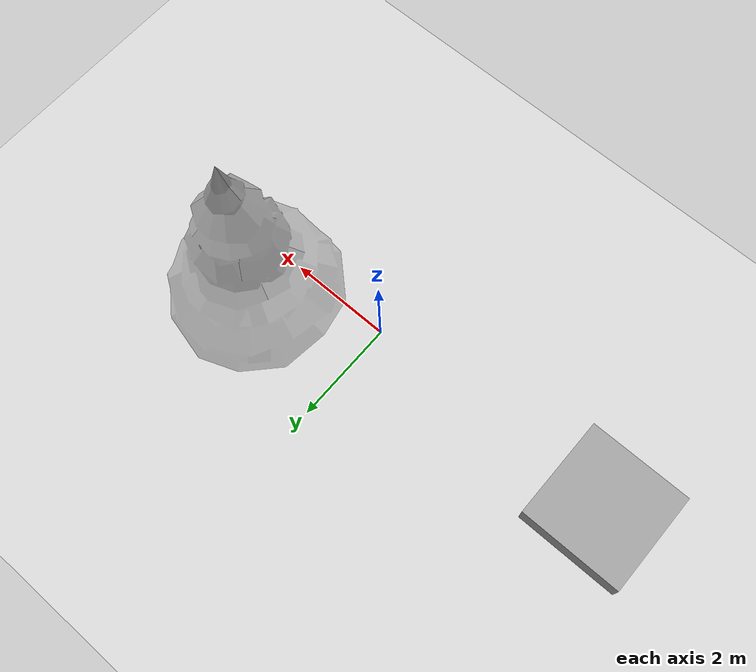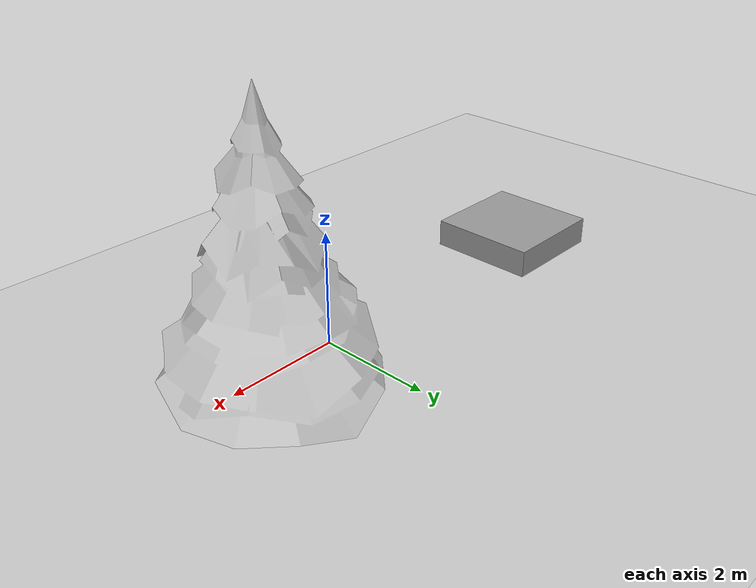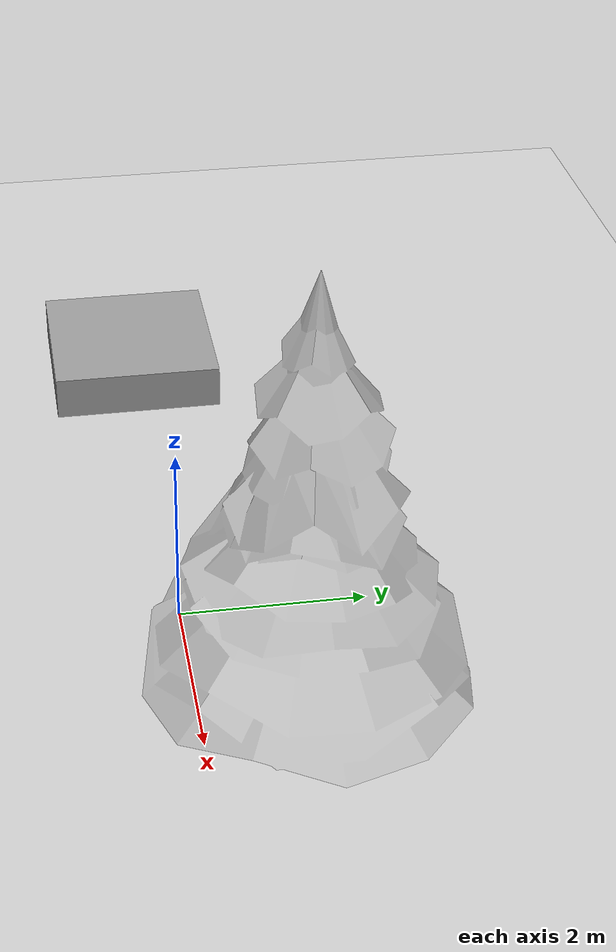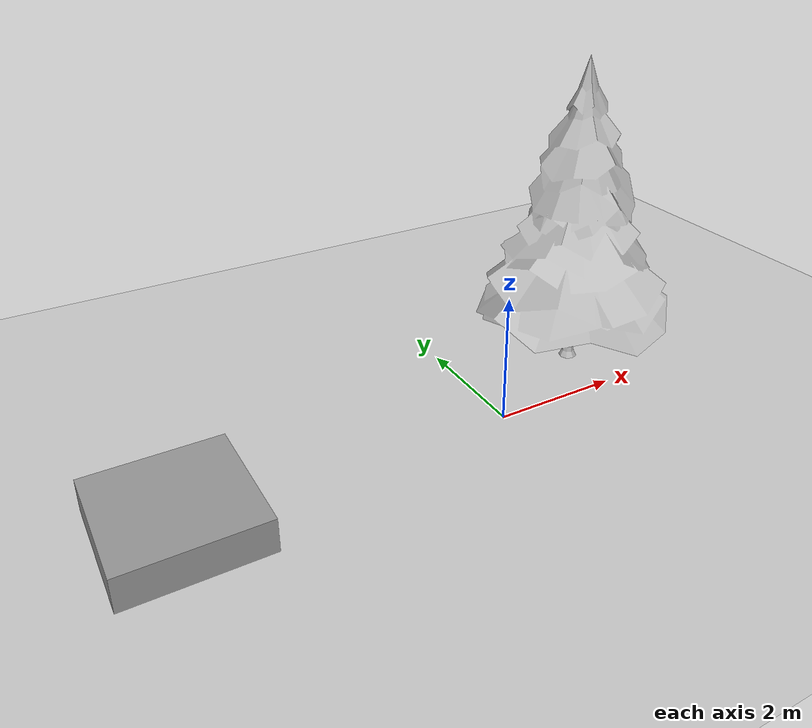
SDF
<?xml version="1.0" ?>

<sdf version="1.5">
	<world name="default">
		<!-- A global light source -->
		<include>
			<uri>model://sun</uri>
		</include>

		<!-- A ground plane -->
		<include>
			<uri>model://ground_plane</uri>
		</include>
        <include>
  <uri>model://pine_tree</uri>
  <pose>2 1 0 0 0 0</pose>
</include>
<include>
      <uri>model://box</uri>
      <pose>-5 0 0 0 0 0</pose>
    </include>
	</world>
</sdf>

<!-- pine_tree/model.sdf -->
<sdf version="1.6">
  <model name="pine_tree">
    <static>true</static>
    <link name="link">
      <collision name="collision">
        <geometry>
          <mesh>
            <uri>file://isr-testbed/pine_tree/meshes/pine_tree.dae</uri>
          </mesh>
        </geometry>
      </collision>
      <visual name="branch">
        <geometry>
          <mesh>
            <uri>file://isr-testbed/pine_tree/meshes/pine_tree.dae</uri>
            <submesh>
              <name>Branch</name>
            </submesh>
          </mesh>
        </geometry>
        <material>
          <script>
            <uri>file://isr-testbed/pine_tree/materials/scripts/</uri>
            <uri>file://isr-testbed/pine_tree/materials/textures/</uri>
            <name>PineTree/Branch</name>
          </script>
        </material>
      </visual>
      <visual name="bark">
        <geometry>
          <mesh>
            <uri>file://isr-testbed/pine_tree/meshes/pine_tree.dae</uri>
            <submesh>
              <name>Bark</name>
            </submesh>
          </mesh>
        </geometry>
        <material>
          <script>
            <uri>file://isr-testbed/pine_tree/materials/scripts/</uri>
            <uri>file://isr-testbed/pine_tree/materials/textures/</uri>
            <name>PineTree/Bark</name>
          </script>
        </material>
      </visual>
    </link>
  </model>
</sdf>

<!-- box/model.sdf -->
<sdf version="1.4">
   <model name="box">
     <static>true</static>
     <link name="link">
       <collision name="collision">
         <geometry>
           <box>
             <size>2 2 1</size>
           </box>
         </geometry>
         <surface>
           <friction>
             <ode>
               <mu>100</mu>
               <mu2>50</mu2>
             </ode>
           </friction>
         </surface>
       </collision>
       <visual name="visual">
         <geometry>
           <box>
             <size>2 2 1</size>
           </box>
         </geometry>
         <material>
           <script>
             <uri>file://media/materials/scripts/gazebo.material</uri>
             <name>Gazebo/Grey</name>
           </script>
         </material>
       </visual>
     </link>
   </model>
 </sdf>
